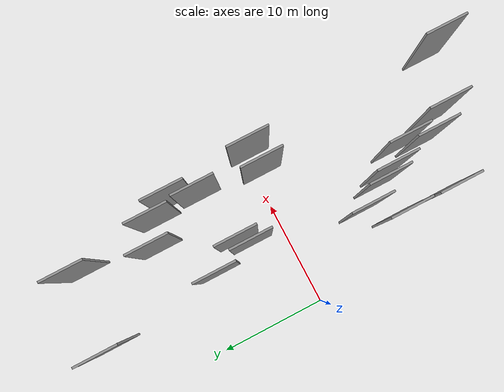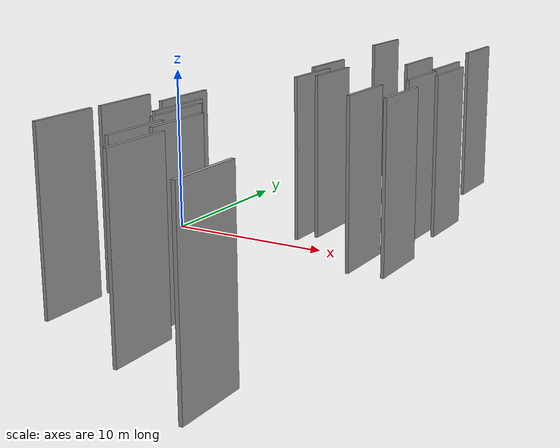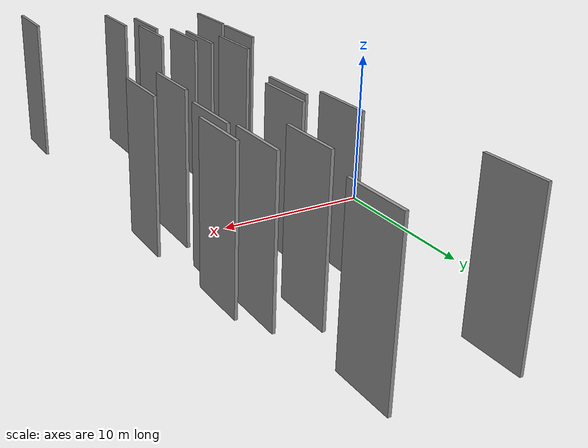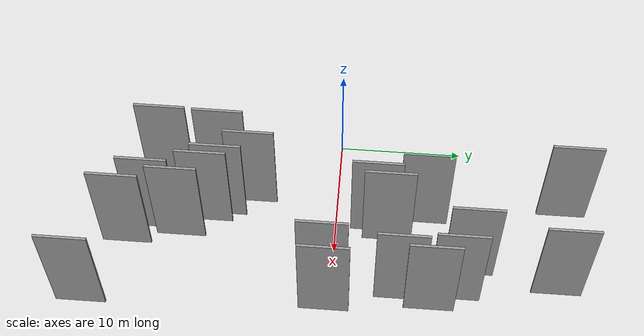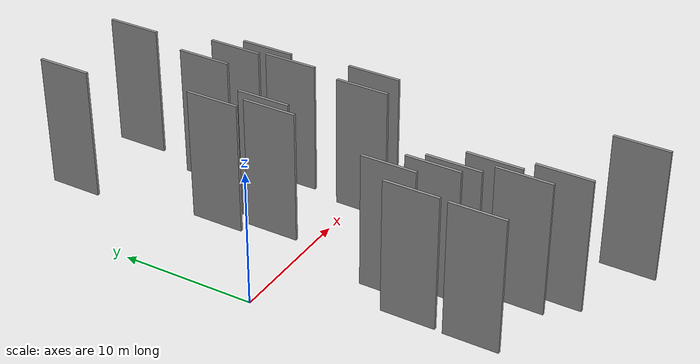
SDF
<sdf version="1.6">
 <world name="default">
  <scene>
   <sky><clouds><speed>12</speed></clouds></sky>
   <ambient>0.4 0.4 0.4 1</ambient>
   <background>0.7 0.7 0.7 1</background>
   <shadows>1</shadows>
  </scene>
  <gravity>0 0 -9.8066</gravity>
  <magnetic_field>6e-06 2.3e-05 -4.2e-05</magnetic_field>
  <physics default="0" name="default_physics" type="ode">
   <ode>
    <solver>
     <type>quick</type>
     <iters>10</iters>
     <sor>1.0</sor>
     <use_dynamic_moi_rescaling>0</use_dynamic_moi_rescaling>
    </solver>
    <constraints>
     <cfm>0</cfm>
     <erp>0.2</erp>
     <contact_max_correcting_vel>100</contact_max_correcting_vel>
     <contact_surface_layer>0.001</contact_surface_layer>
    </constraints>
   </ode>
   <max_step_size>0.004</max_step_size>
   <real_time_factor>1</real_time_factor>
   <real_time_update_rate>250</real_time_update_rate>
  </physics>
  <light name="sun" type="directional">
   <pose>0 0 10 0 0 0</pose>
   <diffuse>0.8 0.8 0.8 1</diffuse>
   <specular>0.2 0.2 0.2 1</specular>
   <attenuation>
    <range>1000</range>
    <constant>0.9</constant>
    <linear>0.01</linear>
    <quadratic>0.001</quadratic>
   </attenuation>
   <direction>-0.5 0.1 -0.9</direction>
  </light>
  <model name="grey_wall_1">
   <static>1</static>
   <pose>5.1534 18.4718 0.0 0.000000 0.000000 1.570796</pose>
   <link name="link">
    <pose>0 0 5.00 0 0 0</pose>
    <collision name="collision"><geometry><box><size>4.00 0.2 10.00</size></box></geometry></collision>
    <visual name="visual">
     <cast_shadows>0</cast_shadows>
     <geometry><box><size>4.00 0.2 10.00</size></box></geometry>
     <material>
      <script>
       <uri>model://grey_wall/materials/scripts</uri>
       <uri>model://grey_wall/materials/textures</uri>
       <name>vrc/grey_wall</name>
      </script>
     </material>
    </visual>
   </link>
  </model>
  <model name="grey_wall_2">
   <static>1</static>
   <pose>15.2676 -0.4548 0.0 0.000000 0.000000 1.570796</pose>
   <link name="link">
    <pose>0 0 5.00 0 0 0</pose>
    <collision name="collision"><geometry><box><size>4.00 0.2 10.00</size></box></geometry></collision>
    <visual name="visual">
     <cast_shadows>0</cast_shadows>
     <geometry><box><size>4.00 0.2 10.00</size></box></geometry>
     <material>
      <script>
       <uri>model://grey_wall/materials/scripts</uri>
       <uri>model://grey_wall/materials/textures</uri>
       <name>vrc/grey_wall</name>
      </script>
     </material>
    </visual>
   </link>
  </model>
  <model name="grey_wall_3">
   <static>1</static>
   <pose>8.6991 -14.9369 0.0 0.000000 0.000000 1.570796</pose>
   <link name="link">
    <pose>0 0 5.00 0 0 0</pose>
    <collision name="collision"><geometry><box><size>4.00 0.2 10.00</size></box></geometry></collision>
    <visual name="visual">
     <cast_shadows>0</cast_shadows>
     <geometry><box><size>4.00 0.2 10.00</size></box></geometry>
     <material>
      <script>
       <uri>model://grey_wall/materials/scripts</uri>
       <uri>model://grey_wall/materials/textures</uri>
       <name>vrc/grey_wall</name>
      </script>
     </material>
    </visual>
   </link>
  </model>
  <model name="grey_wall_4">
   <static>1</static>
   <pose>15.9560 -19.7768 0.0 0.000000 0.000000 1.570796</pose>
   <link name="link">
    <pose>0 0 5.00 0 0 0</pose>
    <collision name="collision"><geometry><box><size>4.00 0.2 10.00</size></box></geometry></collision>
    <visual name="visual">
     <cast_shadows>0</cast_shadows>
     <geometry><box><size>4.00 0.2 10.00</size></box></geometry>
     <material>
      <script>
       <uri>model://grey_wall/materials/scripts</uri>
       <uri>model://grey_wall/materials/textures</uri>
       <name>vrc/grey_wall</name>
      </script>
     </material>
    </visual>
   </link>
  </model>
  <model name="grey_wall_5">
   <static>1</static>
   <pose>5.6094 -7.0376 0.0 0.000000 0.000000 1.570796</pose>
   <link name="link">
    <pose>0 0 5.00 0 0 0</pose>
    <collision name="collision"><geometry><box><size>4.00 0.2 10.00</size></box></geometry></collision>
    <visual name="visual">
     <cast_shadows>0</cast_shadows>
     <geometry><box><size>4.00 0.2 10.00</size></box></geometry>
     <material>
      <script>
       <uri>model://grey_wall/materials/scripts</uri>
       <uri>model://grey_wall/materials/textures</uri>
       <name>vrc/grey_wall</name>
      </script>
     </material>
    </visual>
   </link>
  </model>
  <model name="grey_wall_6">
   <static>1</static>
   <pose>3.7026 -14.2185 0.0 0.000000 0.000000 1.570796</pose>
   <link name="link">
    <pose>0 0 5.00 0 0 0</pose>
    <collision name="collision"><geometry><box><size>4.00 0.2 10.00</size></box></geometry></collision>
    <visual name="visual">
     <cast_shadows>0</cast_shadows>
     <geometry><box><size>4.00 0.2 10.00</size></box></geometry>
     <material>
      <script>
       <uri>model://grey_wall/materials/scripts</uri>
       <uri>model://grey_wall/materials/textures</uri>
       <name>vrc/grey_wall</name>
      </script>
     </material>
    </visual>
   </link>
  </model>
  <model name="grey_wall_7">
   <static>1</static>
   <pose>13.2112 -0.7088 0.0 0.000000 0.000000 1.570796</pose>
   <link name="link">
    <pose>0 0 5.00 0 0 0</pose>
    <collision name="collision"><geometry><box><size>4.00 0.2 10.00</size></box></geometry></collision>
    <visual name="visual">
     <cast_shadows>0</cast_shadows>
     <geometry><box><size>4.00 0.2 10.00</size></box></geometry>
     <material>
      <script>
       <uri>model://grey_wall/materials/scripts</uri>
       <uri>model://grey_wall/materials/textures</uri>
       <name>vrc/grey_wall</name>
      </script>
     </material>
    </visual>
   </link>
  </model>
  <model name="grey_wall_8">
   <static>1</static>
   <pose>7.7329 -10.5293 0.0 0.000000 0.000000 1.570796</pose>
   <link name="link">
    <pose>0 0 5.00 0 0 0</pose>
    <collision name="collision"><geometry><box><size>4.00 0.2 10.00</size></box></geometry></collision>
    <visual name="visual">
     <cast_shadows>0</cast_shadows>
     <geometry><box><size>4.00 0.2 10.00</size></box></geometry>
     <material>
      <script>
       <uri>model://grey_wall/materials/scripts</uri>
       <uri>model://grey_wall/materials/textures</uri>
       <name>vrc/grey_wall</name>
      </script>
     </material>
    </visual>
   </link>
  </model>
  <model name="grey_wall_9">
   <static>1</static>
   <pose>9.3121 -12.5820 0.0 0.000000 0.000000 1.570796</pose>
   <link name="link">
    <pose>0 0 5.00 0 0 0</pose>
    <collision name="collision"><geometry><box><size>4.00 0.2 10.00</size></box></geometry></collision>
    <visual name="visual">
     <cast_shadows>0</cast_shadows>
     <geometry><box><size>4.00 0.2 10.00</size></box></geometry>
     <material>
      <script>
       <uri>model://grey_wall/materials/scripts</uri>
       <uri>model://grey_wall/materials/textures</uri>
       <name>vrc/grey_wall</name>
      </script>
     </material>
    </visual>
   </link>
  </model>
  <model name="grey_wall_10">
   <static>1</static>
   <pose>14.6211 7.8544 0.0 0.000000 0.000000 1.570796</pose>
   <link name="link">
    <pose>0 0 5.00 0 0 0</pose>
    <collision name="collision"><geometry><box><size>4.00 0.2 10.00</size></box></geometry></collision>
    <visual name="visual">
     <cast_shadows>0</cast_shadows>
     <geometry><box><size>4.00 0.2 10.00</size></box></geometry>
     <material>
      <script>
       <uri>model://grey_wall/materials/scripts</uri>
       <uri>model://grey_wall/materials/textures</uri>
       <name>vrc/grey_wall</name>
      </script>
     </material>
    </visual>
   </link>
  </model>
  <model name="grey_wall_11">
   <static>1</static>
   <pose>7.6695 3.2093 0.0 0.000000 0.000000 1.570796</pose>
   <link name="link">
    <pose>0 0 5.00 0 0 0</pose>
    <collision name="collision"><geometry><box><size>4.00 0.2 10.00</size></box></geometry></collision>
    <visual name="visual">
     <cast_shadows>0</cast_shadows>
     <geometry><box><size>4.00 0.2 10.00</size></box></geometry>
     <material>
      <script>
       <uri>model://grey_wall/materials/scripts</uri>
       <uri>model://grey_wall/materials/textures</uri>
       <name>vrc/grey_wall</name>
      </script>
     </material>
    </visual>
   </link>
  </model>
  <model name="grey_wall_12">
   <static>1</static>
   <pose>7.0297 -9.4412 0.0 0.000000 0.000000 1.570796</pose>
   <link name="link">
    <pose>0 0 5.00 0 0 0</pose>
    <collision name="collision"><geometry><box><size>4.00 0.2 10.00</size></box></geometry></collision>
    <visual name="visual">
     <cast_shadows>0</cast_shadows>
     <geometry><box><size>4.00 0.2 10.00</size></box></geometry>
     <material>
      <script>
       <uri>model://grey_wall/materials/scripts</uri>
       <uri>model://grey_wall/materials/textures</uri>
       <name>vrc/grey_wall</name>
      </script>
     </material>
    </visual>
   </link>
  </model>
  <model name="grey_wall_13">
   <static>1</static>
   <pose>6.6386 7.0832 0.0 0.000000 0.000000 1.570796</pose>
   <link name="link">
    <pose>0 0 5.00 0 0 0</pose>
    <collision name="collision"><geometry><box><size>4.00 0.2 10.00</size></box></geometry></collision>
    <visual name="visual">
     <cast_shadows>0</cast_shadows>
     <geometry><box><size>4.00 0.2 10.00</size></box></geometry>
     <material>
      <script>
       <uri>model://grey_wall/materials/scripts</uri>
       <uri>model://grey_wall/materials/textures</uri>
       <name>vrc/grey_wall</name>
      </script>
     </material>
    </visual>
   </link>
  </model>
  <model name="grey_wall_14">
   <static>1</static>
   <pose>10.2776 -16.9299 0.0 0.000000 0.000000 1.570796</pose>
   <link name="link">
    <pose>0 0 5.00 0 0 0</pose>
    <collision name="collision"><geometry><box><size>4.00 0.2 10.00</size></box></geometry></collision>
    <visual name="visual">
     <cast_shadows>0</cast_shadows>
     <geometry><box><size>4.00 0.2 10.00</size></box></geometry>
     <material>
      <script>
       <uri>model://grey_wall/materials/scripts</uri>
       <uri>model://grey_wall/materials/textures</uri>
       <name>vrc/grey_wall</name>
      </script>
     </material>
    </visual>
   </link>
  </model>
  <model name="grey_wall_15">
   <static>1</static>
   <pose>3.7818 -9.6509 0.0 0.000000 0.000000 1.570796</pose>
   <link name="link">
    <pose>0 0 5.00 0 0 0</pose>
    <collision name="collision"><geometry><box><size>4.00 0.2 10.00</size></box></geometry></collision>
    <visual name="visual">
     <cast_shadows>0</cast_shadows>
     <geometry><box><size>4.00 0.2 10.00</size></box></geometry>
     <material>
      <script>
       <uri>model://grey_wall/materials/scripts</uri>
       <uri>model://grey_wall/materials/textures</uri>
       <name>vrc/grey_wall</name>
      </script>
     </material>
    </visual>
   </link>
  </model>
  <model name="grey_wall_16">
   <static>1</static>
   <pose>12.5027 17.9832 0.0 0.000000 0.000000 1.570796</pose>
   <link name="link">
    <pose>0 0 5.00 0 0 0</pose>
    <collision name="collision"><geometry><box><size>4.00 0.2 10.00</size></box></geometry></collision>
    <visual name="visual">
     <cast_shadows>0</cast_shadows>
     <geometry><box><size>4.00 0.2 10.00</size></box></geometry>
     <material>
      <script>
       <uri>model://grey_wall/materials/scripts</uri>
       <uri>model://grey_wall/materials/textures</uri>
       <name>vrc/grey_wall</name>
      </script>
     </material>
    </visual>
   </link>
  </model>
  <model name="grey_wall_17">
   <static>1</static>
   <pose>13.8354 5.4456 0.0 0.000000 0.000000 1.570796</pose>
   <link name="link">
    <pose>0 0 5.00 0 0 0</pose>
    <collision name="collision"><geometry><box><size>4.00 0.2 10.00</size></box></geometry></collision>
    <visual name="visual">
     <cast_shadows>0</cast_shadows>
     <geometry><box><size>4.00 0.2 10.00</size></box></geometry>
     <material>
      <script>
       <uri>model://grey_wall/materials/scripts</uri>
       <uri>model://grey_wall/materials/textures</uri>
       <name>vrc/grey_wall</name>
      </script>
     </material>
    </visual>
   </link>
  </model>
  <model name="grey_wall_18">
   <static>1</static>
   <pose>13.5501 9.8727 0.0 0.000000 0.000000 1.570796</pose>
   <link name="link">
    <pose>0 0 5.00 0 0 0</pose>
    <collision name="collision"><geometry><box><size>4.00 0.2 10.00</size></box></geometry></collision>
    <visual name="visual">
     <cast_shadows>0</cast_shadows>
     <geometry><box><size>4.00 0.2 10.00</size></box></geometry>
     <material>
      <script>
       <uri>model://grey_wall/materials/scripts</uri>
       <uri>model://grey_wall/materials/textures</uri>
       <name>vrc/grey_wall</name>
      </script>
     </material>
    </visual>
   </link>
  </model>
  <model name="grey_wall_19">
   <static>1</static>
   <pose>11.2044 10.9223 0.0 0.000000 0.000000 1.570796</pose>
   <link name="link">
    <pose>0 0 5.00 0 0 0</pose>
    <collision name="collision"><geometry><box><size>4.00 0.2 10.00</size></box></geometry></collision>
    <visual name="visual">
     <cast_shadows>0</cast_shadows>
     <geometry><box><size>4.00 0.2 10.00</size></box></geometry>
     <material>
      <script>
       <uri>model://grey_wall/materials/scripts</uri>
       <uri>model://grey_wall/materials/textures</uri>
       <name>vrc/grey_wall</name>
      </script>
     </material>
    </visual>
   </link>
  </model>
  <model name="grey_wall_20">
   <static>1</static>
   <pose>8.4948 4.2116 0.0 0.000000 0.000000 1.570796</pose>
   <link name="link">
    <pose>0 0 5.00 0 0 0</pose>
    <collision name="collision"><geometry><box><size>4.00 0.2 10.00</size></box></geometry></collision>
    <visual name="visual">
     <cast_shadows>0</cast_shadows>
     <geometry><box><size>4.00 0.2 10.00</size></box></geometry>
     <material>
      <script>
       <uri>model://grey_wall/materials/scripts</uri>
       <uri>model://grey_wall/materials/textures</uri>
       <name>vrc/grey_wall</name>
      </script>
     </material>
    </visual>
   </link>
  </model>
 </world>
</sdf>
